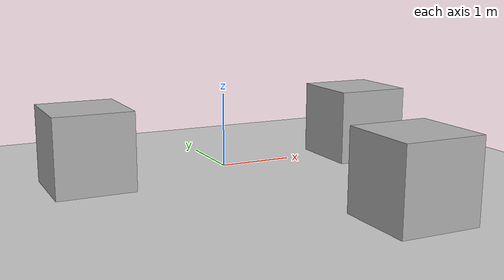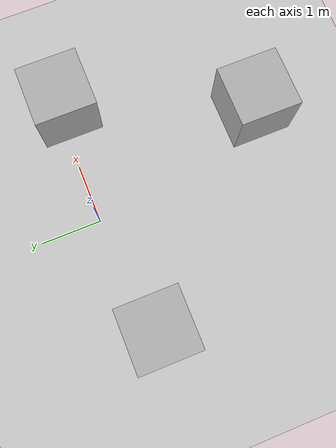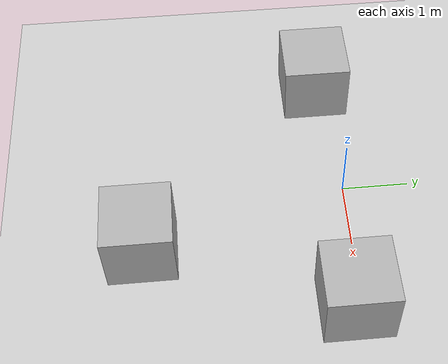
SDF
<?xml version="1.0"?>
<sdf version="1.8">
  <world name="leo_empty">
    <physics name="1ms" type="ignored">
      <max_step_size>0.001</max_step_size>
      <real_time_factor>1.0</real_time_factor>
    </physics>

    <plugin
      filename="ignition-gazebo-physics-system"
      name="ignition::gazebo::systems::Physics">
    </plugin>
    <plugin
      filename="ignition-gazebo-sensors-system"
      name="ignition::gazebo::systems::Sensors">
      <render_engine>ogre2</render_engine>
    </plugin>
    <plugin
      filename="ignition-gazebo-scene-broadcaster-system"
      name="ignition::gazebo::systems::SceneBroadcaster">
    </plugin>
    <plugin
      filename="ignition-gazebo-user-commands-system"
      name="ignition::gazebo::systems::UserCommands">
    </plugin>
    <plugin filename="gz-sim-imu-system"
      name="gz::sim::systems::Imu">
    </plugin>

    <light name="sun" type="directional">
      <cast_shadows>true</cast_shadows>
      <pose>0 0 10 0 0 0</pose>
      <diffuse>0.8 0.8 0.8 1</diffuse>
      <specular>0.2 0.2 0.2 1</specular>
      <attenuation>
        <range>1000</range>
        <constant>0.9</constant>
        <linear>0.01</linear>
        <quadratic>0.001</quadratic>
      </attenuation>
      <direction>-0.5 0.1 -0.9</direction>
    </light>

    <model name="ground_plane">
      <static>true</static>
      <link name="link">
        <collision name="collision">
          <geometry>
            <plane>
              <normal>0 0 1</normal>
              <size>100 100</size>
            </plane>
          </geometry>
          <surface>
            <friction>
              <ode>
                <mu>50</mu>
              </ode>
              <bullet>
                <friction>1</friction>
                <friction2>1</friction2>
                <rolling_friction>0.1</rolling_friction>
              </bullet>
            </friction>
          </surface>
        </collision>
        <visual name="visual">
          <geometry>
            <plane>
              <normal>0 0 1</normal>
              <size>100 100</size>
            </plane>
          </geometry>
          <material>
            <ambient>0.8 0.8 0.8 1</ambient>
            <diffuse>0.8 0.8 0.8 1</diffuse>
            <specular>0.8 0.8 0.8 1</specular>
          </material>
        </visual>
      </link>
    </model>

    <!-- GUI-generated obstacle boxes -->

    <model name='box'>
      <pose>2.02696 -0.11952 0.5 0 0 -0</pose>
      <link name='box_link'>
        <inertial>
          <inertia>
            <ixx>0.16666</ixx>
            <ixy>0</ixy>
            <ixz>0</ixz>
            <iyy>0.16666</iyy>
            <iyz>0</iyz>
            <izz>0.16666</izz>
          </inertia>
          <mass>1</mass>
          <pose>0 0 0 0 -0 0</pose>
        </inertial>
        <collision name='box_collision'>
          <geometry>
            <box>
              <size>1 1 1</size>
            </box>
          </geometry>
          <surface>
            <friction>
              <ode/>
            </friction>
            <bounce/>
            <contact/>
          </surface>
        </collision>
        <visual name='box_visual'>
          <geometry>
            <box>
              <size>1 1 1</size>
            </box>
          </geometry>
          <material>
            <ambient>0.3 0.3 0.3 1</ambient>
            <diffuse>0.7 0.7 0.7 1</diffuse>
            <specular>1 1 1 1</specular>
          </material>
        </visual>
        <pose>0 0 0 0 -0 0</pose>
        <enable_wind>false</enable_wind>
      </link>
      <static>true</static>
      <self_collide>false</self_collide>
    </model>

    <model name='box_1'>
      <pose>0.861267 -3.04746 0.5 0 0 -0</pose>
      <link name='box_link'>
        <inertial>
          <inertia>
            <ixx>0.16666</ixx>
            <ixy>0</ixy>
            <ixz>0</ixz>
            <iyy>0.16666</iyy>
            <iyz>0</iyz>
            <izz>0.16666</izz>
          </inertia>
          <mass>1</mass>
        </inertial>
        <collision name='box_collision'>
          <geometry>
            <box>
              <size>1 1 1</size>
            </box>
          </geometry>
          <surface>
            <friction>
              <ode/>
            </friction>
            <bounce/>
            <contact/>
          </surface>
        </collision>
        <visual name='box_visual'>
          <geometry>
            <box>
              <size>1 1 1</size>
            </box>
          </geometry>
          <material>
            <ambient>0.3 0.3 0.3 1</ambient>
            <diffuse>0.7 0.7 0.7 1</diffuse>
            <specular>1 1 1 1</specular>
          </material>
        </visual>
      </link>
      <static>true</static>
      <self_collide>false</self_collide>
    </model>

    <model name='box_2'>
      <pose>-1.98189 -0.2314 0.5 -0 0 -0</pose>
      <link name='box_link'>
        <inertial>
          <inertia>
            <ixx>0.16666</ixx>
            <ixy>0</ixy>
            <ixz>0</ixz>
            <iyy>0.16666</iyy>
            <iyz>0</iyz>
            <izz>0.16666</izz>
          </inertia>
          <mass>1</mass>
        </inertial>
        <collision name='box_collision'>
          <geometry>
            <box>
              <size>1 1 1</size>
            </box>
          </geometry>
          <surface>
            <friction>
              <ode/>
            </friction>
            <bounce/>
            <contact/>
          </surface>
        </collision>
        <visual name='box_visual'>
          <geometry>
            <box>
              <size>1 1 1</size>
            </box>
          </geometry>
          <material>
            <ambient>0.3 0.3 0.3 1</ambient>
            <diffuse>0.7 0.7 0.7 1</diffuse>
            <specular>1 1 1 1</specular>
          </material>
        </visual>
      </link>
      <static>true</static>
      <self_collide>false</self_collide>
    </model>
  </world>
</sdf>
